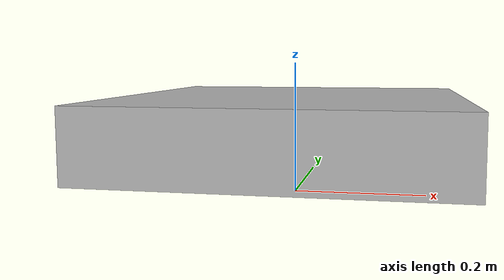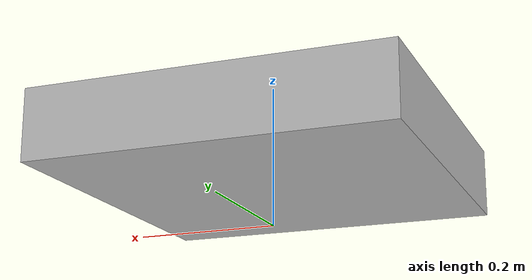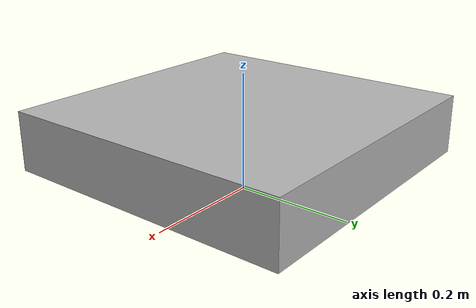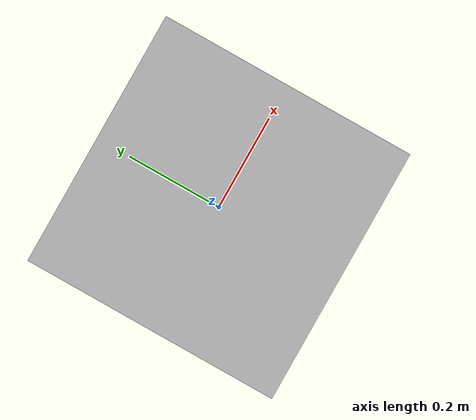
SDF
<?xml version="1.0" ?>
<sdf version="1.6">
  <model name="drone">
    <link name="base_link">
      <pose>0 0 0.1 0 0 0</pose>
      <inertial>
        <mass>1.0</mass>
        <inertia>
          <ixx>0.01</ixx>
          <iyy>0.01</iyy>
          <izz>0.02</izz>
        </inertia>
      </inertial>
      <collision name="collision">
        <geometry>
          <box>
            <size>0.5 0.5 0.1</size>
          </box>
        </geometry>
      </collision>
      <visual name="visual">
        <geometry>
          <box>
            <size>0.5 0.5 0.1</size>
          </box>
        </geometry>
      </visual>
    </link>
  </model>
</sdf>
